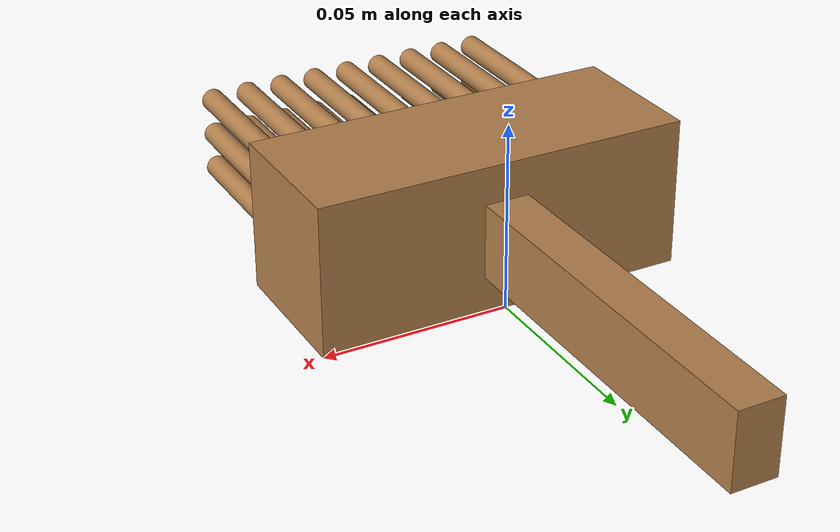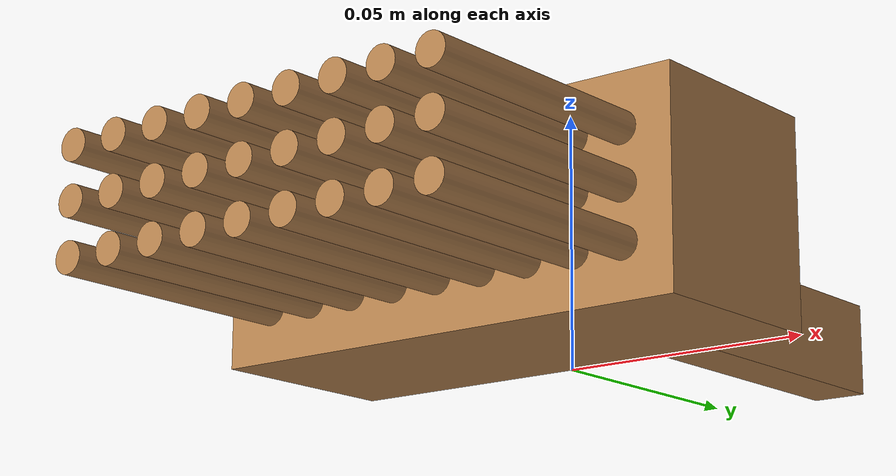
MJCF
<?xml version="1.0" encoding="utf-8"?>
<!-- from https://github.com/vikashplus/mj_envs/tree/master/mj_envs/hand_manipulation_suite/assets -->
<!-- Information about door can be found in this paper: https://arxiv.org/pdf/1709.10087.pdf -->

<mujoco model="brush">
  <asset>
    <texture file="../textures/light-wood.png" type="cube" name="light-wood" />
    <texture file="../textures/dark-wood.png" type="cube" name="dark-wood" />
    <material name="MatDarkWood" texture="dark-wood" texrepeat="3 3" specular="0.4" shininess="0.1" />
    <material name="MatLightWood" texture="light-wood" texrepeat="3 3" specular="0.4" shininess="0.1" />
  </asset>
    <worldbody>
      <body>
        <body name="object">
          <site name="origin" pos="0 0 0" rgba="0 0 0 0" size="0.005"/>

          <body name="body" pos="0 0 0.02">
            <geom pos="0.0 -0.02 0.0" size="0.05 0.02 0.02" type="box" friction="1 1 1" group="0" name="body" material="MatLightWood"/>
            <geom pos="0 0.05 0.0" size="0.006 0.05 0.01" type="box" friction="1 1 1" group="0" name="handle" material="MatLightWood"/>

            <site name="handle" pos="0 0.05 0" rgba="0 0 0 0" size="0.02"/>

            <inertial pos="0. 0 0" quat="0.5 0.5 0.5 0.5" mass="0.01"  diaginertia="0.0001 0.0001 0.0001" />
            <body name="furs" pos="0 -0.04 0">

              <joint name="joint_brush"
                  type="ball"
                  stiffness="5.0" springref="0.0" damping="0.01"
                  />
              <inertial pos="0. 0 0" mass="0.01"  diaginertia="0.0001 0.0001 0.0001" />

            <body name="fur_row1" pos="-0.04 0 0">
              <body pos="0 0 -0.01">
                <geom fromto="0 0 0 0 -0.05 0" size="0.003" type="cylinder" group="0" material="MatDarkWood"/>
              </body>
              <body pos="0 0 0">
                <geom fromto="0 0 0 0 -0.05 0" size="0.003" type="cylinder" group="0" material="MatDarkWood"/>
              </body>
              <body pos="0 0 0.01">
                <geom fromto="0 0 0 0 -0.05 0" size="0.003" type="cylinder" group="0" material="MatDarkWood"/>
              </body>
            </body>

            <body name="fur_row2" pos="-0.03 0 0">
              <body pos="0 0 -0.01">
                <geom fromto="0 0 0 0 -0.05 0" size="0.003" type="cylinder" group="0" material="MatDarkWood"/>
              </body>
              <body pos="0 0 0">
                <geom fromto="0 0 0 0 -0.05 0" size="0.003" type="cylinder" group="0" material="MatDarkWood"/>
              </body>
              <body pos="0 0 0.01">
                <geom fromto="0 0 0 0 -0.05 0" size="0.003" type="cylinder" group="0" material="MatDarkWood"/>
              </body>
            </body>

            <body name="fur_row3" pos="-0.02 0 0">
              <body pos="0 0 -0.01">
                <geom fromto="0 0 0 0 -0.05 0" size="0.003" type="cylinder" group="0" material="MatDarkWood"/>
              </body>
              <body pos="0 0 0">
                <geom fromto="0 0 0 0 -0.05 0" size="0.003" type="cylinder" group="0" material="MatDarkWood"/>
              </body>
              <body pos="0 0 0.01">
                <geom fromto="0 0 0 0 -0.05 0" size="0.003" type="cylinder" group="0" material="MatDarkWood"/>
              </body>
            </body>

            <body name="fur_row4" pos="-0.01 0 0">
              <body pos="0 0 -0.01">
                <geom fromto="0 0 0 0 -0.05 0" size="0.003" type="cylinder" group="0" material="MatDarkWood"/>
              </body>
              <body pos="0 0 0">
                <geom fromto="0 0 0 0 -0.05 0" size="0.003" type="cylinder" group="0" material="MatDarkWood"/>
              </body>
              <body pos="0 0 0.01">
                <geom fromto="0 0 0 0 -0.05 0" size="0.003" type="cylinder" group="0" material="MatDarkWood"/>
              </body>
            </body>

            <body name="fur_row5" pos="0 0 0">
              <body pos="0 0 -0.01">
                <geom fromto="0 0 0 0 -0.05 0" size="0.003" type="cylinder" group="0" material="MatDarkWood"/>
              </body>
              <body pos="0 0 0">
                <geom fromto="0 0 0 0 -0.05 0" size="0.003" type="cylinder" group="0" material="MatDarkWood"/>
              </body>
              <body pos="0 0 0.01">
                <geom fromto="0 0 0 0 -0.05 0" size="0.003" type="cylinder" group="0" material="MatDarkWood"/>
              </body>
            </body>

            <body name="fur_row6" pos="0.01 0 0">
              <body pos="0 0 -0.01">
                <geom fromto="0 0 0 0 -0.05 0" size="0.003" type="cylinder" group="0" material="MatDarkWood"/>
              </body>
              <body pos="0 0 0">
                <geom fromto="0 0 0 0 -0.05 0" size="0.003" type="cylinder" group="0" material="MatDarkWood"/>
              </body>
              <body pos="0 0 0.01">
                <geom fromto="0 0 0 0 -0.05 0" size="0.003" type="cylinder" group="0" material="MatDarkWood"/>
              </body>
            </body>

            <body name="fur_row7" pos="0.02 0 0">
              <body pos="0 0 -0.01">
                <geom fromto="0 0 0 0 -0.05 0" size="0.003" type="cylinder" group="0" material="MatDarkWood"/>
              </body>
              <body pos="0 0 0">
                <geom fromto="0 0 0 0 -0.05 0" size="0.003" type="cylinder" group="0" material="MatDarkWood"/>
              </body>
              <body pos="0 0 0.01">
                <geom fromto="0 0 0 0 -0.05 0" size="0.003" type="cylinder" group="0" material="MatDarkWood"/>
              </body>
            </body>

            <body name="fur_row8" pos="0.03 0 0">
              <body pos="0 0 -0.01">
                <geom fromto="0 0 0 0 -0.05 0" size="0.003" type="cylinder" group="0" material="MatDarkWood"/>
              </body>
              <body pos="0 0 0">
                <geom fromto="0 0 0 0 -0.05 0" size="0.003" type="cylinder" group="0" material="MatDarkWood"/>
              </body>
              <body pos="0 0 0.01">
                <geom fromto="0 0 0 0 -0.05 0" size="0.003" type="cylinder" group="0" material="MatDarkWood"/>
              </body>
            </body>

            <body name="fur_row9" pos="0.04 0 0">
              <body pos="0 0 -0.01">
                <geom fromto="0 0 0 0 -0.05 0" size="0.003" type="cylinder" group="0" material="MatDarkWood"/>
              </body>
              <body pos="0 0 0">
                <geom fromto="0 0 0 0 -0.05 0" size="0.003" type="cylinder" group="0" material="MatDarkWood"/>
              </body>
              <body pos="0 0 0.01">
                <geom fromto="0 0 0 0 -0.05 0" size="0.003" type="cylinder" group="0" material="MatDarkWood"/>
              </body>
            </body>

            </body>
          </body>

        </body>
        <site name="bottom_site" pos="0 0 -0.6" rgba="0 0 0 0" size="0.005"/>
        <site name="top_site" pos="0 0 0.6" rgba="0 0 0 0" size="0.005"/>
        <site name="horizontal_radius_site" pos="0.3 0 0" rgba="0 0 0 0" size="0.1"/>
      </body>
    </worldbody>
</mujoco>
